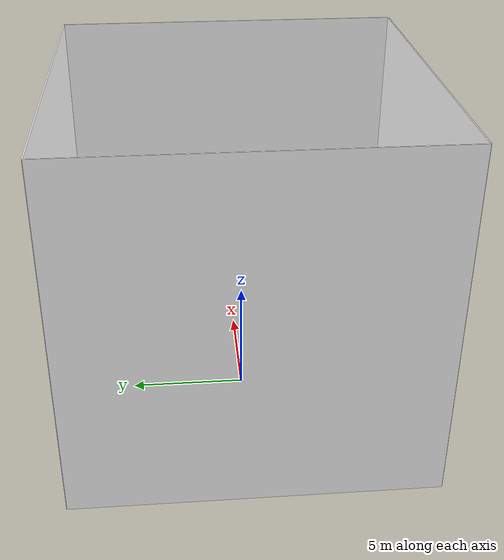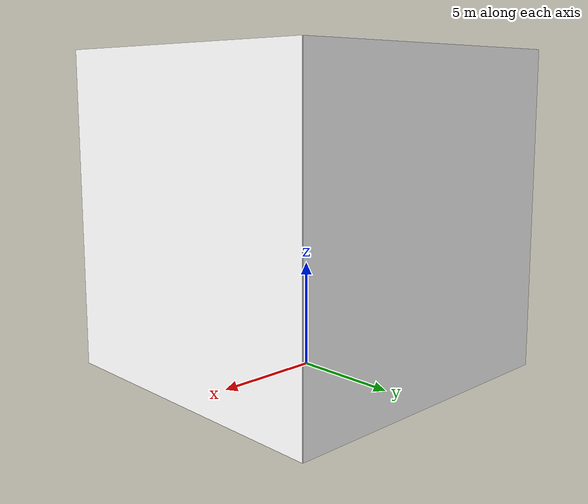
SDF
<?xml version="1.0"?>
<sdf version="1.7">
  <model name="walls">
    <!--
    Axes:
      +X - Pointing towards front (slope)
      +Y - Pointing to left side
      +Z - Up
    Origin:
      (0, 0, 0) at the center bottom of the bin
    -->
    <link name="walls">
      <visual name="one">
        <pose>0 7.5 7.5 0 0 0</pose>
        <geometry>
          <box>
            <size>15 0.05 15</size>
          </box>
        </geometry>
        <material>
         <diffuse>1 1 1 1.0</diffuse>
        </material>
      </visual>
      <collision name="one">
        <pose>0 7.5 7.5 0 0 0</pose>
        <geometry>
          <box>
            <size>15 0.05 15</size>
          </box>
        </geometry>
      </collision>

      <visual name="two">
        <pose>7.5 0 7.5 0 0 0</pose>
        <geometry>
          <box>
            <size>0.05 15 15</size>
          </box>
        </geometry>
        <material>
         <diffuse>1 1 1 1.0</diffuse>
        </material>
      </visual>
      <collision name="two">
        <pose>7.5 0 7.5 0 0 0</pose>
        <geometry>
          <box>
            <size>0.05 15 15</size>
          </box>
        </geometry>
      </collision>

      <visual name="three">
        <pose>0 -7.5 7.5 0 0 0</pose>
        <geometry>
          <box>
            <size>15 0.05 15</size>
          </box>
        </geometry>
        <material>
         <diffuse>1 1 1 1.0</diffuse>
        </material>
      </visual>
      <collision name="three">
        <pose>0 -7.5 7.5 0 0 0</pose>
        <geometry>
          <box>
            <size>15 0.05 15</size>
          </box>
        </geometry>
      </collision>

      <visual name="four">
        <pose>-7.5 0 7.5 0 0 0</pose>
        <geometry>
          <box>
            <size>0.05 15 15</size>
          </box>
        </geometry>
        <material>
         <diffuse>1 1 1 1.0</diffuse>
        </material>
      </visual>
      <collision name="four">
        <pose>-7.5 0 7.5 0 0 0</pose>
        <geometry>
          <box>
            <size>0.05 15 15</size>
          </box>
        </geometry>
      </collision>

    </link>
  </model>
</sdf>
